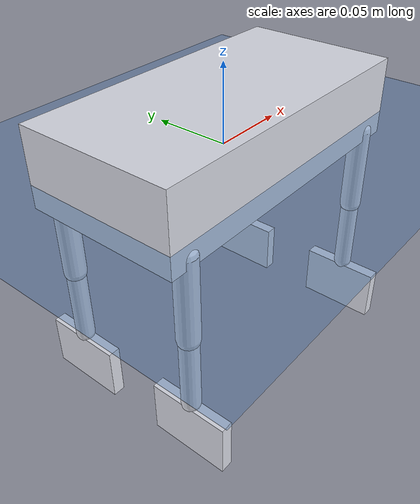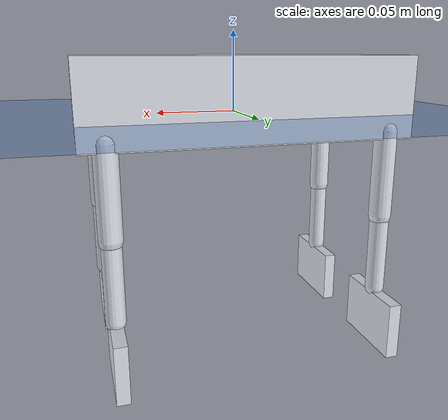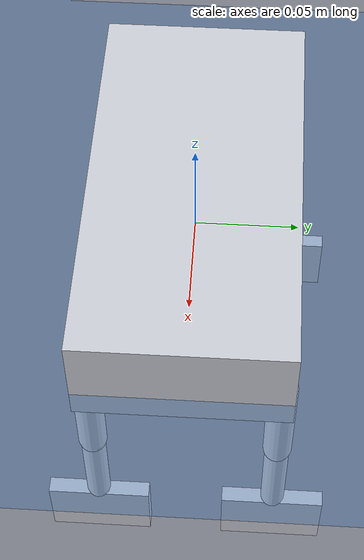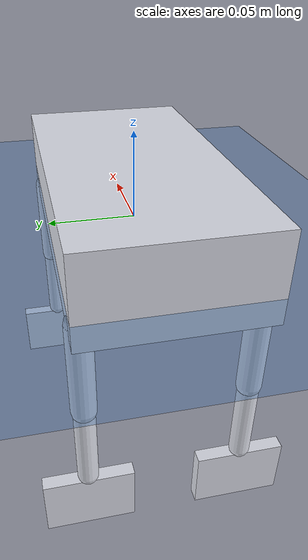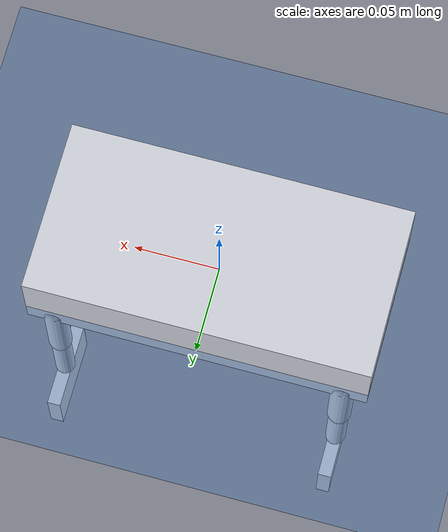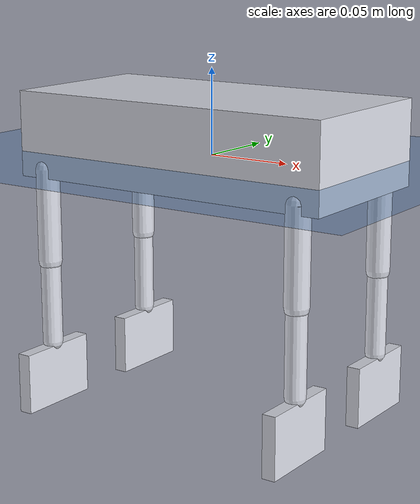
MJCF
<mujoco model="toy_quad_swimmer">
  <!-- Layer 1 placeholder: a toy quadruped swimmer, 3 joints per leg
       (hip, knee, flipper wrist). Swapping in a real robot replaces this file only. -->
  <compiler angle="radian"/>
  <option timestep="0.002" gravity="0 0 -9.81" integrator="implicitfast"/>
  <default>
    <joint damping="0.004" armature="0.0002"/>
    <geom rgba="0.85 0.86 0.9 1"/>
    <position kp="60" dampratio="1" ctrlrange="-1.3 1.3" forcerange="-3 3"/>
  </default>
  <worldbody>
    <light pos="0 0 2" dir="0 0 -1"/>
    <geom name="vis_waterplane" type="plane" size="4 4 .1" pos="0 0 0" rgba="0.15 0.4 0.7 0.25" contype="0" conaffinity="0"/>
    <body name="trunk" pos="0 0 0.01">
      <freejoint name="root"/>
      <geom name="body_trunk" type="box" size="0.10 0.05 0.025" mass="0.60"/>
      <body name="upper_FL" pos="0.085 0.045 -0.02">
        <joint name="J1_FL" type="hinge" axis="0 1 0" range="-1.3 1.3"/>
        <geom name="link_FL_up" type="capsule" fromto="0 0 0 0 0 -0.055" size="0.007" mass="0.020"/>
        <body name="lower_FL" pos="0 0 -0.055">
          <joint name="J2_FL" type="hinge" axis="0 1 0" range="-1.3 1.3"/>
          <geom name="link_FL_lo" type="capsule" fromto="0 0 0 0 0 -0.050" size="0.006" mass="0.015"/>
          <body name="flipper_FL" pos="0 0 -0.052">
            <joint name="J3_FL" type="hinge" axis="0 1 0" range="-1.6 1.6"/>
            <geom name="flip_FL" type="box" pos="0 0 -0.018" size="0.004 0.026 0.018" mass="0.010"/>
          </body>
        </body>
      </body>
      <body name="upper_FR" pos="0.085 -0.045 -0.02">
        <joint name="J1_FR" type="hinge" axis="0 1 0" range="-1.3 1.3"/>
        <geom name="link_FR_up" type="capsule" fromto="0 0 0 0 0 -0.055" size="0.007" mass="0.020"/>
        <body name="lower_FR" pos="0 0 -0.055">
          <joint name="J2_FR" type="hinge" axis="0 1 0" range="-1.3 1.3"/>
          <geom name="link_FR_lo" type="capsule" fromto="0 0 0 0 0 -0.050" size="0.006" mass="0.015"/>
          <body name="flipper_FR" pos="0 0 -0.052">
            <joint name="J3_FR" type="hinge" axis="0 1 0" range="-1.6 1.6"/>
            <geom name="flip_FR" type="box" pos="0 0 -0.018" size="0.004 0.026 0.018" mass="0.010"/>
          </body>
        </body>
      </body>
      <body name="upper_BL" pos="-0.085 0.045 -0.02">
        <joint name="J1_BL" type="hinge" axis="0 1 0" range="-1.3 1.3"/>
        <geom name="link_BL_up" type="capsule" fromto="0 0 0 0 0 -0.055" size="0.007" mass="0.020"/>
        <body name="lower_BL" pos="0 0 -0.055">
          <joint name="J2_BL" type="hinge" axis="0 1 0" range="-1.3 1.3"/>
          <geom name="link_BL_lo" type="capsule" fromto="0 0 0 0 0 -0.050" size="0.006" mass="0.015"/>
          <body name="flipper_BL" pos="0 0 -0.052">
            <joint name="J3_BL" type="hinge" axis="0 1 0" range="-1.6 1.6"/>
            <geom name="flip_BL" type="box" pos="0 0 -0.018" size="0.004 0.026 0.018" mass="0.010"/>
          </body>
        </body>
      </body>
      <body name="upper_BR" pos="-0.085 -0.045 -0.02">
        <joint name="J1_BR" type="hinge" axis="0 1 0" range="-1.3 1.3"/>
        <geom name="link_BR_up" type="capsule" fromto="0 0 0 0 0 -0.055" size="0.007" mass="0.020"/>
        <body name="lower_BR" pos="0 0 -0.055">
          <joint name="J2_BR" type="hinge" axis="0 1 0" range="-1.3 1.3"/>
          <geom name="link_BR_lo" type="capsule" fromto="0 0 0 0 0 -0.050" size="0.006" mass="0.015"/>
          <body name="flipper_BR" pos="0 0 -0.052">
            <joint name="J3_BR" type="hinge" axis="0 1 0" range="-1.6 1.6"/>
            <geom name="flip_BR" type="box" pos="0 0 -0.018" size="0.004 0.026 0.018" mass="0.010"/>
          </body>
        </body>
      </body>
    </body>
  </worldbody>
  <actuator>
    <position name="Joint_FL1.1" joint="J1_FL"/>
    <position name="Joint_FL2.1" joint="J2_FL"/>
    <position name="Joint_FL3.1" joint="J3_FL"/>
    <position name="Joint_FR1.1" joint="J1_FR"/>
    <position name="Joint_FR2.1" joint="J2_FR"/>
    <position name="Joint_FR3.1" joint="J3_FR"/>
    <position name="Joint_BL1.1" joint="J1_BL"/>
    <position name="Joint_BL2.1" joint="J2_BL"/>
    <position name="Joint_BL3.1" joint="J3_BL"/>
    <position name="Joint_BR1.1" joint="J1_BR"/>
    <position name="Joint_BR2.1" joint="J2_BR"/>
    <position name="Joint_BR3.1" joint="J3_BR"/>
  </actuator>
</mujoco>
